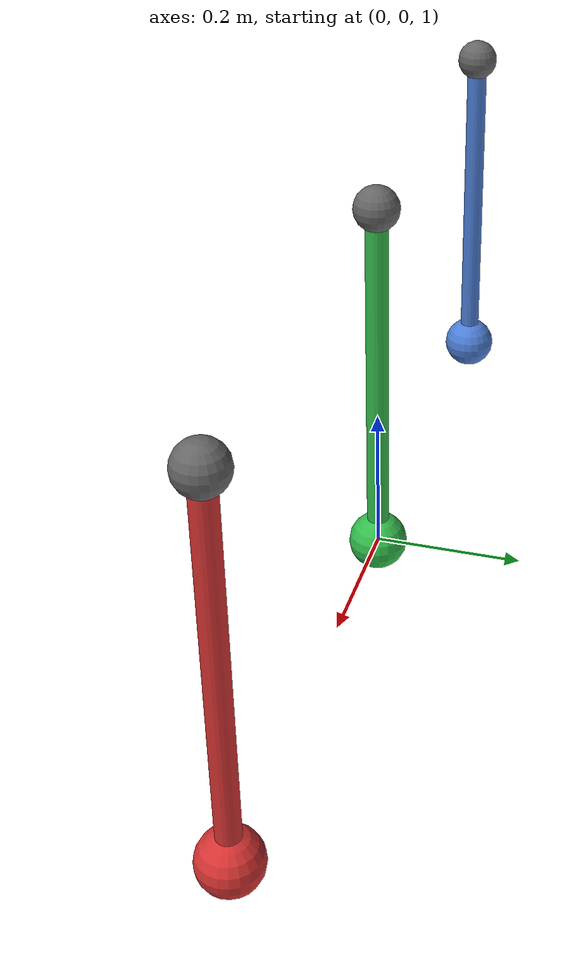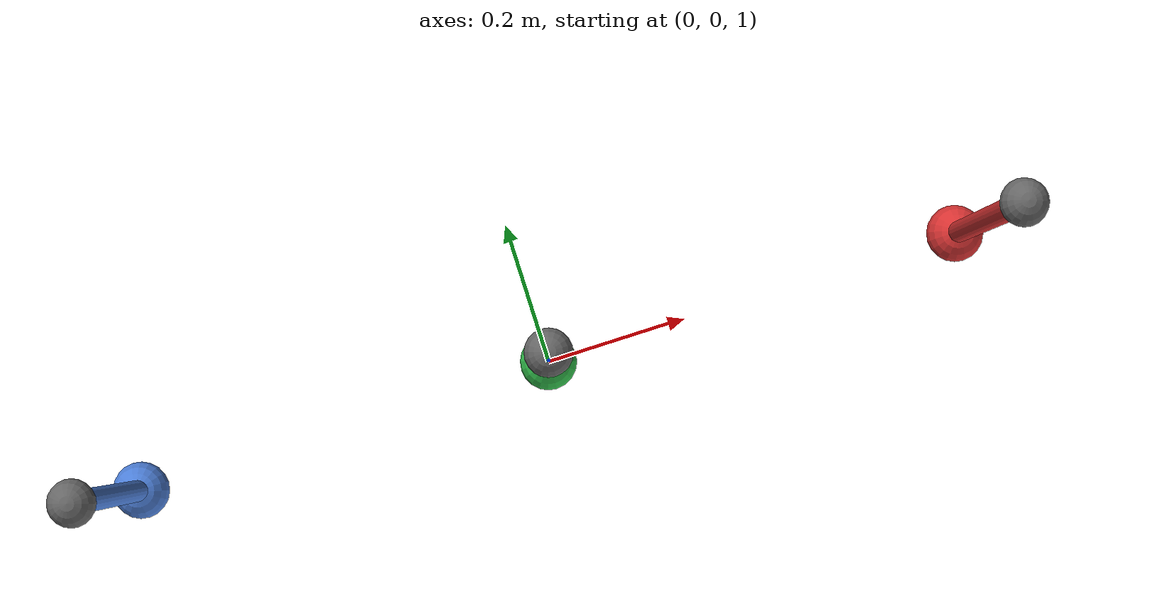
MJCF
<mujoco model="hinge-limits">
  <compiler angle="degree"/>
  <option gravity="0 0 -9.81" timestep="0.002"/>

  <worldbody>
    <!-- Stiff (blue) -->
    <body name="pivot_stiff" pos="-0.6 0 1.5">
      <geom name="pivot_stiff_geom" type="sphere" size="0.03"
            rgba="0.4 0.4 0.4 1" contype="0" conaffinity="0"/>
      <body name="rod_stiff" pos="0 0 0">
        <joint name="stiff" type="hinge" axis="0 1 0"
               limited="true" range="-45 45" ref="60"
               solreflimit="0.005 1.0"/>
        <geom name="rod_stiff_geom" type="capsule"
              fromto="0 0 0 0 0 -0.5" size="0.015" mass="0.5"
              rgba="0.3 0.5 0.85 1"/>
        <body name="tip_stiff" pos="0 0 -0.5">
          <geom name="tip_stiff_geom" type="sphere" size="0.04" mass="0.5"
                rgba="0.3 0.5 0.85 1"/>
        </body>
      </body>
    </body>

    <!-- Default (green) -->
    <body name="pivot_default" pos="0 0 1.5">
      <geom name="pivot_default_geom" type="sphere" size="0.03"
            rgba="0.4 0.4 0.4 1" contype="0" conaffinity="0"/>
      <body name="rod_default" pos="0 0 0">
        <joint name="default" type="hinge" axis="0 1 0"
               limited="true" range="-45 45" ref="60"/>
        <geom name="rod_default_geom" type="capsule"
              fromto="0 0 0 0 0 -0.5" size="0.015" mass="0.5"
              rgba="0.2 0.75 0.3 1"/>
        <body name="tip_default" pos="0 0 -0.5">
          <geom name="tip_default_geom" type="sphere" size="0.04" mass="0.5"
                rgba="0.2 0.75 0.3 1"/>
        </body>
      </body>
    </body>

    <!-- Soft (red) -->
    <body name="pivot_soft" pos="0.6 0 1.5">
      <geom name="pivot_soft_geom" type="sphere" size="0.03"
            rgba="0.4 0.4 0.4 1" contype="0" conaffinity="0"/>
      <body name="rod_soft" pos="0 0 0">
        <joint name="soft" type="hinge" axis="0 1 0"
               limited="true" range="-45 45" ref="60"
               solreflimit="0.08 1.0"/>
        <geom name="rod_soft_geom" type="capsule"
              fromto="0 0 0 0 0 -0.5" size="0.015" mass="0.5"
              rgba="0.85 0.2 0.2 1"/>
        <body name="tip_soft" pos="0 0 -0.5">
          <geom name="tip_soft_geom" type="sphere" size="0.04" mass="0.5"
                rgba="0.85 0.2 0.2 1"/>
        </body>
      </body>
    </body>
  </worldbody>

  <sensor>
    <jointlimitfrc name="stiff_lf" joint="stiff"/>
    <jointlimitfrc name="default_lf" joint="default"/>
    <jointlimitfrc name="soft_lf" joint="soft"/>
  </sensor>
</mujoco>
